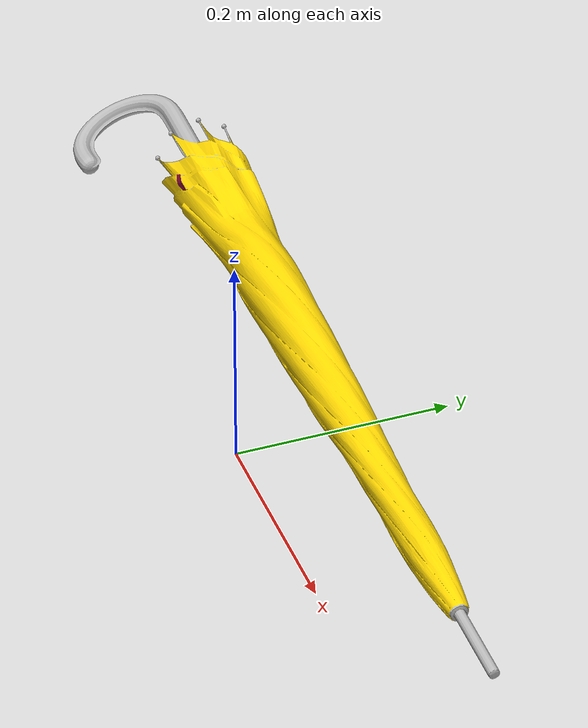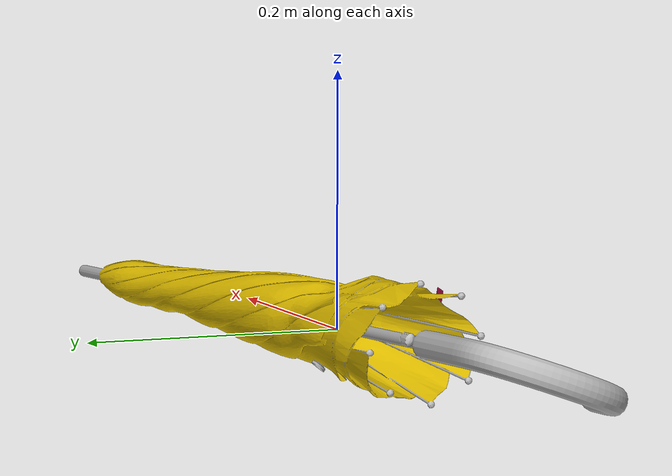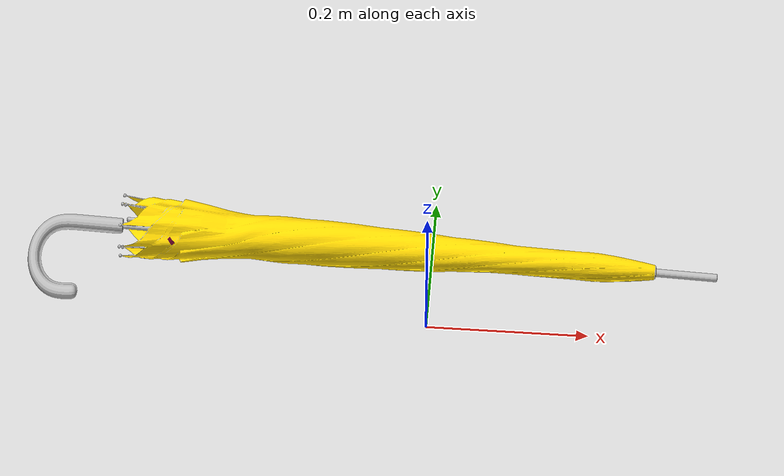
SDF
<?xml version="1.0" ?>
<sdf version="1.5">
  <model name="Umbrella">
    <static>true</static>
    <link name="link">
      <pose degrees="true">-0.5 0 0 0 0 0</pose>
      <visual name="visual">
        <geometry>
          <mesh>
            <uri>model://umbrella_0/model.dae</uri>
          </mesh>
        </geometry>
      </visual>
    </link>
  </model>
</sdf>
